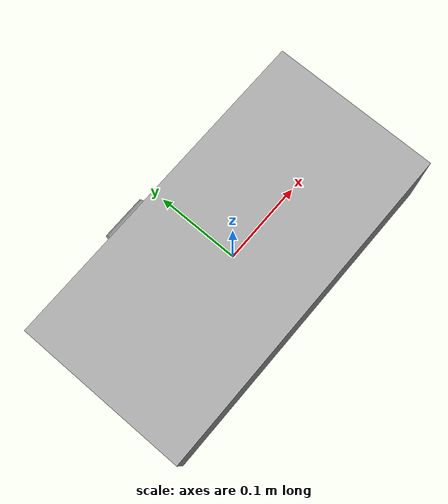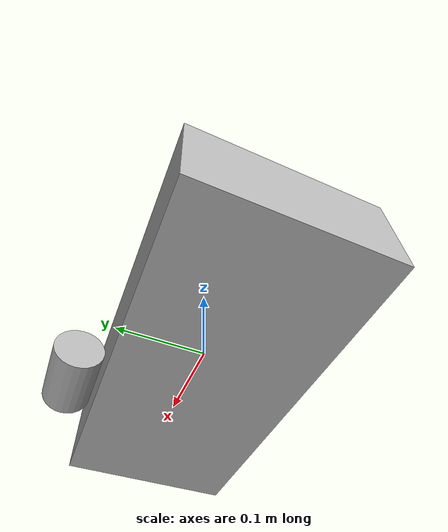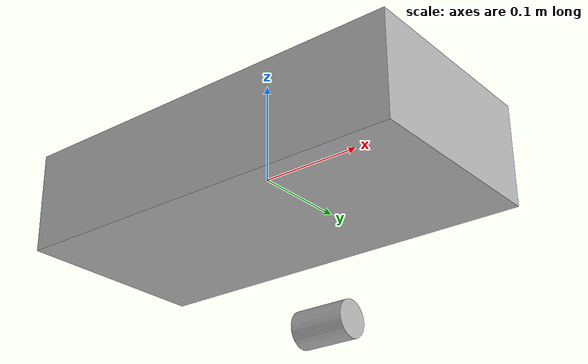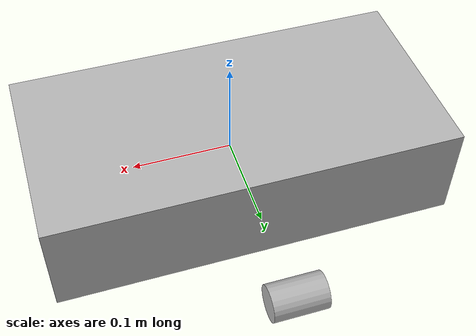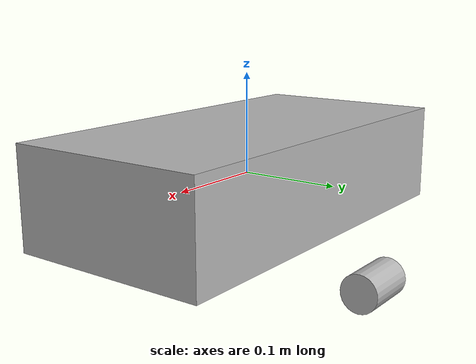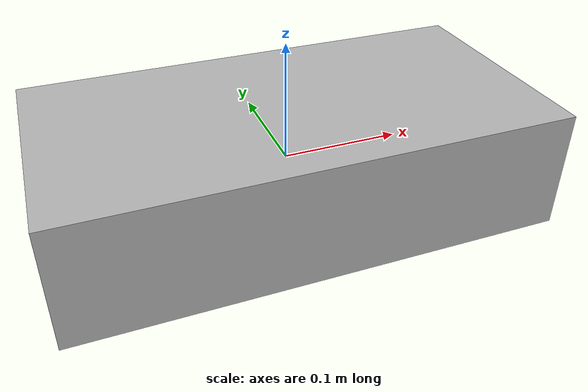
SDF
<sdf version='1.5'>
    <model name='example'>

        <link name='chassis'>
            <pose>0 0 0 0 -0 0</pose>
            <inertial>
                <pose>0 0 0 0 -0 0</pose>
                <mass>1.031</mass>
                <inertia>
                    <ixx>0.00357413</ixx>
                    <ixy>0</ixy>
                    <ixz>0</ixz>
                    <iyy>0.00508627</iyy>
                    <iyz>0</iyz>
                    <izz>0.00838547</izz>
                </inertia>
            </inertial>
            <collision name='chassis_collision'>
                <pose>0 0 0 0 -0 0</pose>
                <geometry>
                    <box>
                        <size>0.4 0.2 0.1</size>
                    </box>
                </geometry>
            </collision>
            <visual name='chassis_visual'>
                <pose>0 0 0 0 -0 0</pose>
                <geometry>
                    <box>
                        <size>0.4 0.2 0.1</size>
                    </box>
                </geometry>
            </visual>
        </link>

        <link name='left_front_wheel'>
            <pose>0.1 0.13 0 0 1.5707 1.5707</pose>
            <inertial>
                <pose>0.1 0.13 0 0 1.5707 1.5707</pose>
                <mass>0.02</mass>
                <inertia>
                    <ixx>8e-06</ixx>
                    <ixy>0</ixy>
                    <ixz>0</ixz>
                    <iyy>8e-06</iyy>
                    <iyz>0</iyz>
                    <izz>6.66667e-07</izz>
                </inertia>
            </inertial>
            <collision name='left_front_wheel_collision'>
                <pose>0.1 0.13 0 0 1.5707 1.5707</pose>
                <geometry>
                    <cylinder>
                        <length>0.06</length>
                        <radius>0.02</radius>
                    </cylinder>
                </geometry>
            </collision>
            <visual name='left_front_wheel_visual'>
                <pose>0.1 0.13 0 0 1.5707 1.5707</pose>
                <geometry>
                    <cylinder>
                        <length>0.06</length>
                        <radius>0.02</radius>
                    </cylinder>
                </geometry>
            </visual>
        </link>

        <joint name='left_front_wheel_joint' type='revolute'>
            <child>left_front_wheel</child>
            <parent>chassis</parent>
            <axis>
                <xyz>0 0 1</xyz>
                <limit>
                    <lower>0</lower>
                    <upper>0</upper>
                    <effort>20</effort>
                    <velocity>2</velocity>
                </limit>
                <dynamics>
                    <spring_reference>0</spring_reference>
                    <spring_stiffness>0</spring_stiffness>
                </dynamics>
                <use_parent_model_frame>1</use_parent_model_frame>
            </axis>
        </joint>

    </model>
</sdf>
